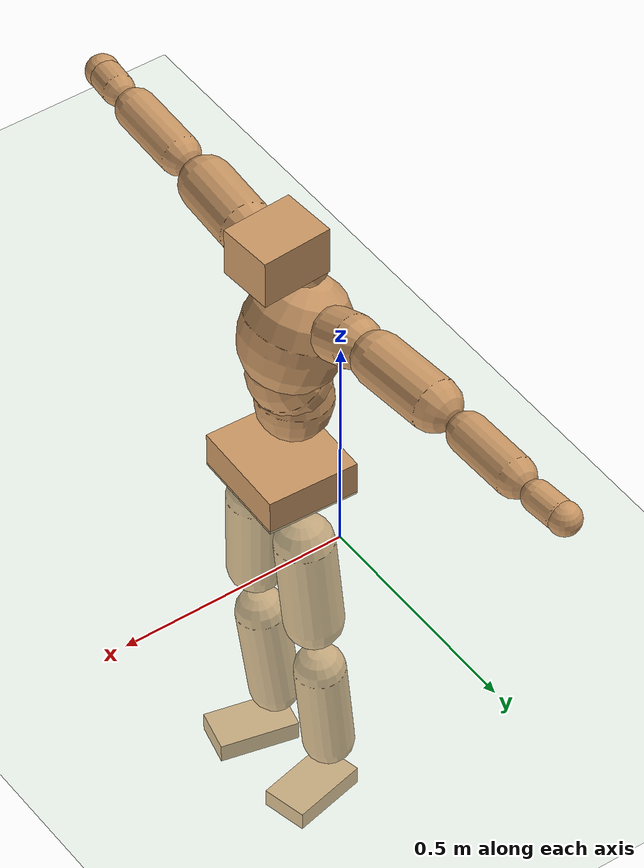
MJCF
<mujoco model="humanoid">
  <compiler coordinate="local" angle="radian"/>
  <default>
    <joint damping="0.0" armature="0.01" stiffness="0.0" limited="true"/>
    <geom conaffinity="1" condim="3" contype="7" margin="0.001" rgba="0.8 0.6 .4 1"/>
  </default>
  <asset>
    <texture type="skybox" builtin="gradient" rgb1=".4 .5 .6" rgb2="0 0 0" width="100" height="100"/>
    <texture builtin="flat" height="1278" mark="cross" markrgb="1 1 1" name="texgeom" random="0.01" rgb1="0.8 0.6 0.4" rgb2="0.8 0.6 0.4" type="cube" width="127"/>
    <texture builtin="checker" height="100" name="texplane" rgb1="0 0 0" rgb2="0.8 0.8 0.8" type="2d" width="100"/>
    <material name="MatPlane" reflectance="0.5" shininess="1" specular="1" texrepeat="60 60" texture="texplane"/>
    <material name="geom" texture="texgeom" texuniform="true"/>
  </asset>
  <worldbody>
    <light cutoff="100" diffuse="1 1 1" dir="-0 0 -1.3" directional="true" exponent="1" pos="0 0 1.3" specular=".1 .1 .1"/>
    <geom conaffinity="1" condim="3" name="floor" pos="0 0 0" rgba="0.8 0.9 0.8 1" size="100 100 .2" type="plane" material="MatPlane"/>
    <body name="Pelvis" pos="0.0015 -0.2014 0.0459">
      <freejoint name="Pelvis"/>
      <geom type="box" contype="1" conaffinity="1" density="500" pos="-0.0039 0.0001 -0.0125" size="0.101 0.1141 0.0408" quat="0.9998 0.0000 0.0000 -0.0180" name="Pelvis"/>
      <body name="L_Hip" pos="0.0034 0.0756 -0.0881">
        <joint name="L_Hip_x" type="hinge" pos="0 0 0" axis="1 0 0" stiffness="800" damping="80" armature="0.02" range="-180.0000 180.0000"/>
        <joint name="L_Hip_y" type="hinge" pos="0 0 0" axis="0 1 0" stiffness="800" damping="80" armature="0.02" range="-180.0000 180.0000"/>
        <joint name="L_Hip_z" type="hinge" pos="0 0 0" axis="0 0 1" stiffness="800" damping="80" armature="0.02" range="-180.0000 180.0000"/>
        <geom type="capsule" contype="1" conaffinity="1" density="500" fromto="-0.0038 0.0051 -0.0713 -0.0154 0.0204 -0.2850" size="0.0624" name="L_Hip"/>
        <body name="L_Knee" pos="-0.0192 0.0255 -0.3563">
          <joint name="L_Knee_x" type="hinge" pos="0 0 0" axis="1 0 0" stiffness="800" damping="80" armature="0.02" range="-180.0000 180.0000"/>
          <joint name="L_Knee_y" type="hinge" pos="0 0 0" axis="0 1 0" stiffness="800" damping="80" armature="0.02" range="-180.0000 180.0000"/>
          <joint name="L_Knee_z" type="hinge" pos="0 0 0" axis="0 0 1" stiffness="800" damping="80" armature="0.02" range="-180.0000 180.0000"/>
          <geom type="capsule" contype="1" conaffinity="1" density="500" fromto="-0.0088 -0.0023 -0.0774 -0.0352 -0.0090 -0.3096" size="0.0541" name="L_Knee"/>
          <body name="L_Ankle" pos="-0.044 -0.0113 -0.387">
            <joint name="L_Ankle_x" type="hinge" pos="0 0 0" axis="1 0 0" stiffness="800" damping="80" armature="0.02" range="-180.0000 180.0000"/>
            <joint name="L_Ankle_y" type="hinge" pos="0 0 0" axis="0 1 0" stiffness="800" damping="80" armature="0.02" range="-180.0000 180.0000"/>
            <joint name="L_Ankle_z" type="hinge" pos="0 0 0" axis="0 0 1" stiffness="800" damping="80" armature="0.02" range="-180.0000 180.0000"/>
            <geom type="box" contype="1" conaffinity="1" density="500" pos="0.0585 0.0137 -0.0289" size="0.085 0.0498 0.0212" quat="0.9934 0.0000 0.0000 0.1149" name="L_Ankle"/>
            <body name="L_Toe" pos="0.1169 0.0274 -0.0577">
              <joint name="L_Toe_x" type="hinge" pos="0 0 0" axis="1 0 0" stiffness="500" damping="50" armature="0.02" range="-180.0000 180.0000"/>
              <joint name="L_Toe_y" type="hinge" pos="0 0 0" axis="0 1 0" stiffness="500" damping="50" armature="0.02" range="-180.0000 180.0000"/>
              <joint name="L_Toe_z" type="hinge" pos="0 0 0" axis="0 0 1" stiffness="500" damping="50" armature="0.02" range="-180.0000 180.0000"/>
              <geom type="box" contype="1" conaffinity="1" density="500" pos="0.0000 0.0000 0.0286" size="0.001 0.0025 0.0011" quat="0.9927 0.0000 0.0000 0.1209" name="L_Toe"/>
            </body>
          </body>
        </body>
      </body>
      <body name="R_Hip" pos="0.0065 -0.0734 -0.0887">
        <joint name="R_Hip_x" type="hinge" pos="0 0 0" axis="1 0 0" stiffness="800" damping="80" armature="0.02" range="-180.0000 180.0000"/>
        <joint name="R_Hip_y" type="hinge" pos="0 0 0" axis="0 1 0" stiffness="800" damping="80" armature="0.02" range="-180.0000 180.0000"/>
        <joint name="R_Hip_z" type="hinge" pos="0 0 0" axis="0 0 1" stiffness="800" damping="80" armature="0.02" range="-180.0000 180.0000"/>
        <geom type="capsule" contype="1" conaffinity="1" density="500" fromto="-0.0039 -0.0064 -0.0718 -0.0154 -0.0254 -0.2873" size="0.0617" name="R_Hip"/>
        <body name="R_Knee" pos="-0.0193 -0.0318 -0.3591">
          <joint name="R_Knee_x" type="hinge" pos="0 0 0" axis="1 0 0" stiffness="800" damping="80" armature="0.02" range="-180.0000 180.0000"/>
          <joint name="R_Knee_y" type="hinge" pos="0 0 0" axis="0 1 0" stiffness="800" damping="80" armature="0.02" range="-180.0000 180.0000"/>
          <joint name="R_Knee_z" type="hinge" pos="0 0 0" axis="0 0 1" stiffness="800" damping="80" armature="0.02" range="-180.0000 180.0000"/>
          <geom type="capsule" contype="1" conaffinity="1" density="500" fromto="-0.0089 0.0026 -0.0781 -0.0355 0.0105 -0.3123" size="0.0544" name="R_Knee"/>
          <body name="R_Ankle" pos="-0.0443 0.0132 -0.3904">
            <joint name="R_Ankle_x" type="hinge" pos="0 0 0" axis="1 0 0" stiffness="800" damping="80" armature="0.02" range="-180.0000 180.0000"/>
            <joint name="R_Ankle_y" type="hinge" pos="0 0 0" axis="0 1 0" stiffness="800" damping="80" armature="0.02" range="-180.0000 180.0000"/>
            <joint name="R_Ankle_z" type="hinge" pos="0 0 0" axis="0 0 1" stiffness="800" damping="80" armature="0.02" range="-180.0000 180.0000"/>
            <geom type="box" contype="1" conaffinity="1" density="500" pos="0.0608 -0.0139 -0.0235" size="0.0865 0.049 0.0218" quat="0.9937 0.0000 0.0000 -0.1121" name="R_Ankle"/>
            <body name="R_Toe" pos="0.1216 -0.0278 -0.047">
              <joint name="R_Toe_x" type="hinge" pos="0 0 0" axis="1 0 0" stiffness="500" damping="50" armature="0.02" range="-180.0000 180.0000"/>
              <joint name="R_Toe_y" type="hinge" pos="0 0 0" axis="0 1 0" stiffness="500" damping="50" armature="0.02" range="-180.0000 180.0000"/>
              <joint name="R_Toe_z" type="hinge" pos="0 0 0" axis="0 0 1" stiffness="500" damping="50" armature="0.02" range="-180.0000 180.0000"/>
              <geom type="box" contype="1" conaffinity="1" density="500" pos="0.0000 0.0000 0.0246" size="0.001 0.0025 0.0011" quat="0.9947 0.0000 0.0000 -0.1026" name="R_Toe"/>
            </body>
          </body>
        </body>
      </body>
      <body name="Torso" pos="-0.0336 -0.0013 0.1021">
        <joint name="Torso_x" type="hinge" pos="0 0 0" axis="1 0 0" stiffness="1000" damping="100" armature="0.02" range="-180.0000 180.0000"/>
        <joint name="Torso_y" type="hinge" pos="0 0 0" axis="0 1 0" stiffness="1000" damping="100" armature="0.02" range="-180.0000 180.0000"/>
        <joint name="Torso_z" type="hinge" pos="0 0 0" axis="0 0 1" stiffness="1000" damping="100" armature="0.02" range="-180.0000 180.0000"/>
        <geom type="capsule" contype="1" conaffinity="1" density="500" fromto="-0.0023 0.0008 0.0595 -0.0015 0.0005 0.0397" size="0.0794" name="Torso"/>
        <body name="Spine" pos="-0.0038 0.0013 0.0992">
          <joint name="Spine_x" type="hinge" pos="0 0 0" axis="1 0 0" stiffness="1000" damping="100" armature="0.02" range="-180.0000 180.0000"/>
          <joint name="Spine_y" type="hinge" pos="0 0 0" axis="0 1 0" stiffness="1000" damping="100" armature="0.02" range="-180.0000 180.0000"/>
          <joint name="Spine_z" type="hinge" pos="0 0 0" axis="0 0 1" stiffness="1000" damping="100" armature="0.02" range="-180.0000 180.0000"/>
          <geom type="capsule" contype="1" conaffinity="1" density="500" fromto="0.0178 0.0011 0.0287 0.0118 0.0007 0.0191" size="0.0843" name="Spine"/>
          <body name="Chest" pos="0.0296 0.0018 0.0478">
            <joint name="Chest_x" type="hinge" pos="0 0 0" axis="1 0 0" stiffness="1000" damping="100" armature="0.02" range="-180.0000 180.0000"/>
            <joint name="Chest_y" type="hinge" pos="0 0 0" axis="0 1 0" stiffness="1000" damping="100" armature="0.02" range="-180.0000 180.0000"/>
            <joint name="Chest_z" type="hinge" pos="0 0 0" axis="0 0 1" stiffness="1000" damping="100" armature="0.02" range="-180.0000 180.0000"/>
            <geom type="capsule" contype="1" conaffinity="1" density="500" fromto="-0.0348 -0.0007 0.0973 -0.0232 -0.0005 0.0649" size="0.1107" name="Chest"/>
            <body name="Neck" pos="-0.0665 -0.0007 0.2272">
              <joint name="Neck_x" type="hinge" pos="0 0 0" axis="1 0 0" stiffness="500" damping="50" armature="0.02" range="-180.0000 180.0000"/>
              <joint name="Neck_y" type="hinge" pos="0 0 0" axis="0 1 0" stiffness="500" damping="50" armature="0.02" range="-180.0000 180.0000"/>
              <joint name="Neck_z" type="hinge" pos="0 0 0" axis="0 0 1" stiffness="500" damping="50" armature="0.02" range="-180.0000 180.0000"/>
              <geom type="capsule" contype="1" conaffinity="1" density="500" fromto="0.0106 0.0003 0.0116 0.0424 0.0013 0.0462" size="0.0443" name="Neck"/>
              <body name="Head" pos="0.053 0.0016 0.0578">
                <joint name="Head_x" type="hinge" pos="0 0 0" axis="1 0 0" stiffness="500" damping="50" armature="0.02" range="-180.0000 180.0000"/>
                <joint name="Head_y" type="hinge" pos="0 0 0" axis="0 1 0" stiffness="500" damping="50" armature="0.02" range="-180.0000 180.0000"/>
                <joint name="Head_z" type="hinge" pos="0 0 0" axis="0 0 1" stiffness="500" damping="50" armature="0.02" range="-180.0000 180.0000"/>
                <geom type="box" contype="1" conaffinity="1" density="500" pos="0.0275 0.0018 0.0299" size="0.078 0.0617 0.0545" quat="0.9995 0.0000 0.0000 0.0329" name="Head"/>
              </body>
            </body>
            <body name="L_Thorax" pos="-0.0518 0.0796 0.1302">
              <joint name="L_Thorax_x" type="hinge" pos="0 0 0" axis="1 0 0" stiffness="500" damping="50" armature="0.02" range="-180.0000 180.0000"/>
              <joint name="L_Thorax_y" type="hinge" pos="0 0 0" axis="0 1 0" stiffness="500" damping="50" armature="0.02" range="-180.0000 180.0000"/>
              <joint name="L_Thorax_z" type="hinge" pos="0 0 0" axis="0 0 1" stiffness="500" damping="50" armature="0.02" range="-180.0000 180.0000"/>
              <geom type="capsule" contype="1" conaffinity="1" density="500" fromto="-0.0019 0.0177 0.0060 -0.0076 0.0708 0.0239" size="0.055" name="L_Thorax"/>
              <body name="L_Shoulder" pos="-0.0095 0.0885 0.0299">
                <joint name="L_Shoulder_x" type="hinge" pos="0 0 0" axis="1 0 0" stiffness="500" damping="50" armature="0.02" range="-720.0000 720.0000"/>
                <joint name="L_Shoulder_y" type="hinge" pos="0 0 0" axis="0 1 0" stiffness="500" damping="50" armature="0.02" range="-720.0000 720.0000"/>
                <joint name="L_Shoulder_z" type="hinge" pos="0 0 0" axis="0 0 1" stiffness="500" damping="50" armature="0.02" range="-720.0000 720.0000"/>
                <geom type="capsule" contype="1" conaffinity="1" density="500" fromto="-0.0054 0.0514 -0.0013 -0.0218 0.2056 -0.0054" size="0.0559" name="L_Shoulder"/>
                <body name="L_Elbow" pos="-0.0272 0.257 -0.0067">
                  <joint name="L_Elbow_x" type="hinge" pos="0 0 0" axis="1 0 0" stiffness="500" damping="50" armature="0.02" range="-720.0000 720.0000"/>
                  <joint name="L_Elbow_y" type="hinge" pos="0 0 0" axis="0 1 0" stiffness="500" damping="50" armature="0.02" range="-720.0000 720.0000"/>
                  <joint name="L_Elbow_z" type="hinge" pos="0 0 0" axis="0 0 1" stiffness="500" damping="50" armature="0.02" range="-720.0000 720.0000"/>
                  <geom type="capsule" contype="1" conaffinity="1" density="500" fromto="0.0001 0.0483 0.0021 0.0005 0.1931 0.0082" size="0.0428" name="L_Elbow"/>
                  <body name="L_Wrist" pos="0.0006 0.2414 0.0103">
                    <joint name="L_Wrist_x" type="hinge" pos="0 0 0" axis="1 0 0" stiffness="300" damping="30" armature="0.02" range="-180.0000 180.0000"/>
                    <joint name="L_Wrist_y" type="hinge" pos="0 0 0" axis="0 1 0" stiffness="300" damping="30" armature="0.02" range="-180.0000 180.0000"/>
                    <joint name="L_Wrist_z" type="hinge" pos="0 0 0" axis="0 0 1" stiffness="300" damping="30" armature="0.02" range="-180.0000 180.0000"/>
                    <geom type="capsule" contype="1" conaffinity="1" density="500" fromto="-0.0028 0.0171 -0.0020 -0.0112 0.0682 -0.0079" size="0.0325" name="L_Wrist"/>
                    <body name="L_Hand" pos="-0.014 0.0853 -0.0099">
                      <joint name="L_Hand_x" type="hinge" pos="0 0 0" axis="1 0 0" stiffness="300" damping="30" armature="0.02" range="-180.0000 180.0000"/>
                      <joint name="L_Hand_y" type="hinge" pos="0 0 0" axis="0 1 0" stiffness="300" damping="30" armature="0.02" range="-180.0000 180.0000"/>
                      <joint name="L_Hand_z" type="hinge" pos="0 0 0" axis="0 0 1" stiffness="300" damping="30" armature="0.02" range="-180.0000 180.0000"/>
                      <geom type="sphere" contype="1" conaffinity="1" density="500" size="0.0344" pos="0.0000 0.0000 0.0000" name="L_Hand"/>
                    </body>
                  </body>
                </body>
              </body>
            </body>
            <body name="R_Thorax" pos="-0.0559 -0.0822 0.1291">
              <joint name="R_Thorax_x" type="hinge" pos="0 0 0" axis="1 0 0" stiffness="500" damping="50" armature="0.02" range="-180.0000 180.0000"/>
              <joint name="R_Thorax_y" type="hinge" pos="0 0 0" axis="0 1 0" stiffness="500" damping="50" armature="0.02" range="-180.0000 180.0000"/>
              <joint name="R_Thorax_z" type="hinge" pos="0 0 0" axis="0 0 1" stiffness="500" damping="50" armature="0.02" range="-180.0000 180.0000"/>
              <geom type="capsule" contype="1" conaffinity="1" density="500" fromto="-0.0022 -0.0182 0.0065 -0.0088 -0.0729 0.0259" size="0.0547" name="R_Thorax"/>
              <body name="R_Shoulder" pos="-0.011 -0.0912 0.0324">
                <joint name="R_Shoulder_x" type="hinge" pos="0 0 0" axis="1 0 0" stiffness="500" damping="50" armature="0.02" range="-720.0000 720.0000"/>
                <joint name="R_Shoulder_y" type="hinge" pos="0 0 0" axis="0 1 0" stiffness="500" damping="50" armature="0.02" range="-720.0000 720.0000"/>
                <joint name="R_Shoulder_z" type="hinge" pos="0 0 0" axis="0 0 1" stiffness="500" damping="50" armature="0.02" range="-720.0000 720.0000"/>
                <geom type="capsule" contype="1" conaffinity="1" density="500" fromto="-0.0045 -0.0509 -0.0026 -0.0182 -0.2035 -0.0104" size="0.0581" name="R_Shoulder"/>
                <body name="R_Elbow" pos="-0.0227 -0.2544 -0.013">
                  <joint name="R_Elbow_x" type="hinge" pos="0 0 0" axis="1 0 0" stiffness="500" damping="50" armature="0.02" range="-720.0000 720.0000"/>
                  <joint name="R_Elbow_y" type="hinge" pos="0 0 0" axis="0 1 0" stiffness="500" damping="50" armature="0.02" range="-720.0000 720.0000"/>
                  <joint name="R_Elbow_z" type="hinge" pos="0 0 0" axis="0 0 1" stiffness="500" damping="50" armature="0.02" range="-720.0000 720.0000"/>
                  <geom type="capsule" contype="1" conaffinity="1" density="500" fromto="-0.0003 -0.0503 0.0027 -0.0010 -0.2014 0.0106" size="0.0437" name="R_Elbow"/>
                  <body name="R_Wrist" pos="-0.0013 -0.2517 0.0133">
                    <joint name="R_Wrist_x" type="hinge" pos="0 0 0" axis="1 0 0" stiffness="300" damping="30" armature="0.02" range="-180.0000 180.0000"/>
                    <joint name="R_Wrist_y" type="hinge" pos="0 0 0" axis="0 1 0" stiffness="300" damping="30" armature="0.02" range="-180.0000 180.0000"/>
                    <joint name="R_Wrist_z" type="hinge" pos="0 0 0" axis="0 0 1" stiffness="300" damping="30" armature="0.02" range="-180.0000 180.0000"/>
                    <geom type="capsule" contype="1" conaffinity="1" density="500" fromto="-0.0023 -0.0176 -0.0016 -0.0093 -0.0705 -0.0064" size="0.0341" name="R_Wrist"/>
                    <body name="R_Hand" pos="-0.0116 -0.0881 -0.008">
                      <joint name="R_Hand_x" type="hinge" pos="0 0 0" axis="1 0 0" stiffness="300" damping="30" armature="0.02" range="-180.0000 180.0000"/>
                      <joint name="R_Hand_y" type="hinge" pos="0 0 0" axis="0 1 0" stiffness="300" damping="30" armature="0.02" range="-180.0000 180.0000"/>
                      <joint name="R_Hand_z" type="hinge" pos="0 0 0" axis="0 0 1" stiffness="300" damping="30" armature="0.02" range="-180.0000 180.0000"/>
                      <geom type="sphere" contype="1" conaffinity="1" density="500" size="0.0355" pos="0.0000 0.0000 0.0000" name="R_Hand"/>
                    </body>
                  </body>
                </body>
              </body>
            </body>
          </body>
        </body>
      </body>
    </body>
  </worldbody>
  <actuator>
    <motor name="L_Hip_x" joint="L_Hip_x" gear="500"/>
    <motor name="L_Hip_y" joint="L_Hip_y" gear="500"/>
    <motor name="L_Hip_z" joint="L_Hip_z" gear="500"/>
    <motor name="L_Knee_x" joint="L_Knee_x" gear="500"/>
    <motor name="L_Knee_y" joint="L_Knee_y" gear="500"/>
    <motor name="L_Knee_z" joint="L_Knee_z" gear="500"/>
    <motor name="L_Ankle_x" joint="L_Ankle_x" gear="500"/>
    <motor name="L_Ankle_y" joint="L_Ankle_y" gear="500"/>
    <motor name="L_Ankle_z" joint="L_Ankle_z" gear="500"/>
    <motor name="L_Toe_x" joint="L_Toe_x" gear="500"/>
    <motor name="L_Toe_y" joint="L_Toe_y" gear="500"/>
    <motor name="L_Toe_z" joint="L_Toe_z" gear="500"/>
    <motor name="R_Hip_x" joint="R_Hip_x" gear="500"/>
    <motor name="R_Hip_y" joint="R_Hip_y" gear="500"/>
    <motor name="R_Hip_z" joint="R_Hip_z" gear="500"/>
    <motor name="R_Knee_x" joint="R_Knee_x" gear="500"/>
    <motor name="R_Knee_y" joint="R_Knee_y" gear="500"/>
    <motor name="R_Knee_z" joint="R_Knee_z" gear="500"/>
    <motor name="R_Ankle_x" joint="R_Ankle_x" gear="500"/>
    <motor name="R_Ankle_y" joint="R_Ankle_y" gear="500"/>
    <motor name="R_Ankle_z" joint="R_Ankle_z" gear="500"/>
    <motor name="R_Toe_x" joint="R_Toe_x" gear="500"/>
    <motor name="R_Toe_y" joint="R_Toe_y" gear="500"/>
    <motor name="R_Toe_z" joint="R_Toe_z" gear="500"/>
    <motor name="Torso_x" joint="Torso_x" gear="500"/>
    <motor name="Torso_y" joint="Torso_y" gear="500"/>
    <motor name="Torso_z" joint="Torso_z" gear="500"/>
    <motor name="Spine_x" joint="Spine_x" gear="500"/>
    <motor name="Spine_y" joint="Spine_y" gear="500"/>
    <motor name="Spine_z" joint="Spine_z" gear="500"/>
    <motor name="Chest_x" joint="Chest_x" gear="500"/>
    <motor name="Chest_y" joint="Chest_y" gear="500"/>
    <motor name="Chest_z" joint="Chest_z" gear="500"/>
    <motor name="Neck_x" joint="Neck_x" gear="500"/>
    <motor name="Neck_y" joint="Neck_y" gear="500"/>
    <motor name="Neck_z" joint="Neck_z" gear="500"/>
    <motor name="Head_x" joint="Head_x" gear="500"/>
    <motor name="Head_y" joint="Head_y" gear="500"/>
    <motor name="Head_z" joint="Head_z" gear="500"/>
    <motor name="L_Thorax_x" joint="L_Thorax_x" gear="500"/>
    <motor name="L_Thorax_y" joint="L_Thorax_y" gear="500"/>
    <motor name="L_Thorax_z" joint="L_Thorax_z" gear="500"/>
    <motor name="L_Shoulder_x" joint="L_Shoulder_x" gear="500"/>
    <motor name="L_Shoulder_y" joint="L_Shoulder_y" gear="500"/>
    <motor name="L_Shoulder_z" joint="L_Shoulder_z" gear="500"/>
    <motor name="L_Elbow_x" joint="L_Elbow_x" gear="500"/>
    <motor name="L_Elbow_y" joint="L_Elbow_y" gear="500"/>
    <motor name="L_Elbow_z" joint="L_Elbow_z" gear="500"/>
    <motor name="L_Wrist_x" joint="L_Wrist_x" gear="500"/>
    <motor name="L_Wrist_y" joint="L_Wrist_y" gear="500"/>
    <motor name="L_Wrist_z" joint="L_Wrist_z" gear="500"/>
    <motor name="L_Hand_x" joint="L_Hand_x" gear="500"/>
    <motor name="L_Hand_y" joint="L_Hand_y" gear="500"/>
    <motor name="L_Hand_z" joint="L_Hand_z" gear="500"/>
    <motor name="R_Thorax_x" joint="R_Thorax_x" gear="500"/>
    <motor name="R_Thorax_y" joint="R_Thorax_y" gear="500"/>
    <motor name="R_Thorax_z" joint="R_Thorax_z" gear="500"/>
    <motor name="R_Shoulder_x" joint="R_Shoulder_x" gear="500"/>
    <motor name="R_Shoulder_y" joint="R_Shoulder_y" gear="500"/>
    <motor name="R_Shoulder_z" joint="R_Shoulder_z" gear="500"/>
    <motor name="R_Elbow_x" joint="R_Elbow_x" gear="500"/>
    <motor name="R_Elbow_y" joint="R_Elbow_y" gear="500"/>
    <motor name="R_Elbow_z" joint="R_Elbow_z" gear="500"/>
    <motor name="R_Wrist_x" joint="R_Wrist_x" gear="500"/>
    <motor name="R_Wrist_y" joint="R_Wrist_y" gear="500"/>
    <motor name="R_Wrist_z" joint="R_Wrist_z" gear="500"/>
    <motor name="R_Hand_x" joint="R_Hand_x" gear="500"/>
    <motor name="R_Hand_y" joint="R_Hand_y" gear="500"/>
    <motor name="R_Hand_z" joint="R_Hand_z" gear="500"/>
  </actuator>
  <contact>
    <exclude body1="Torso" body2="Chest"/>
    <exclude body1="Head" body2="Chest"/>
    <exclude body1="R_Knee" body2="R_Toe"/>
    <exclude body1="R_Knee" body2="L_Ankle"/>
    <exclude body1="R_Knee" body2="L_Toe"/>
    <exclude body1="L_Knee" body2="L_Toe"/>
    <exclude body1="L_Knee" body2="R_Ankle"/>
    <exclude body1="L_Knee" body2="R_Toe"/>
    <exclude body1="L_Shoulder" body2="Chest"/>
    <exclude body1="R_Shoulder" body2="Chest"/>
  </contact>
  <sensor/>
  <size njmax="700" nconmax="700"/>
</mujoco>
